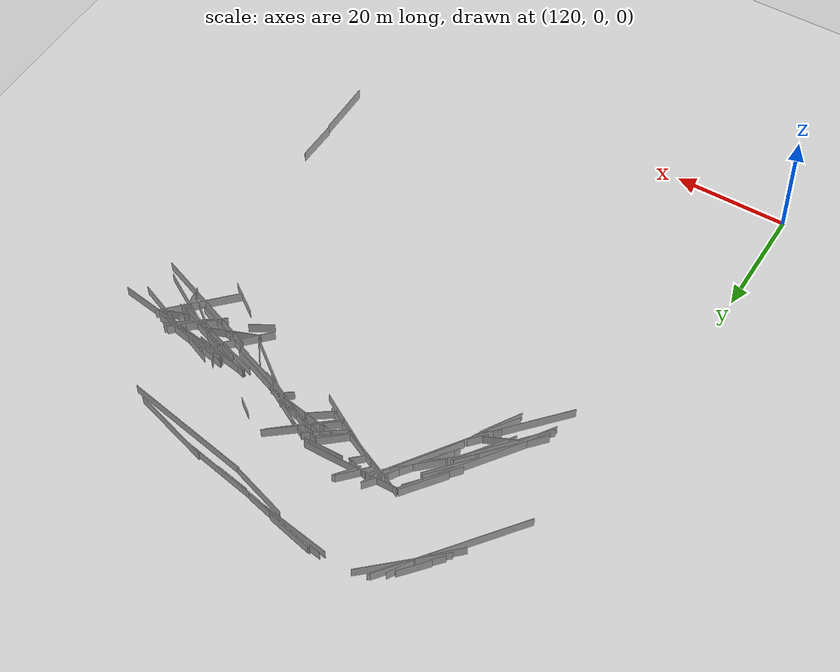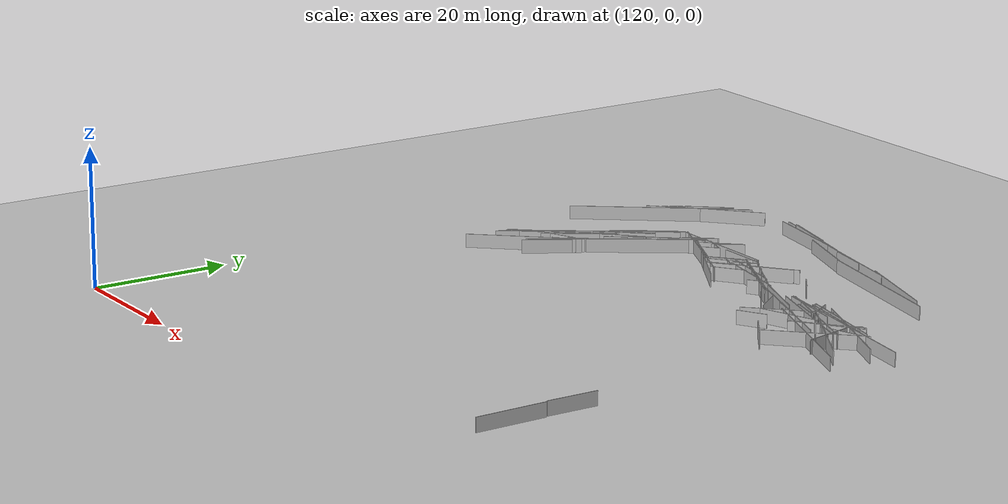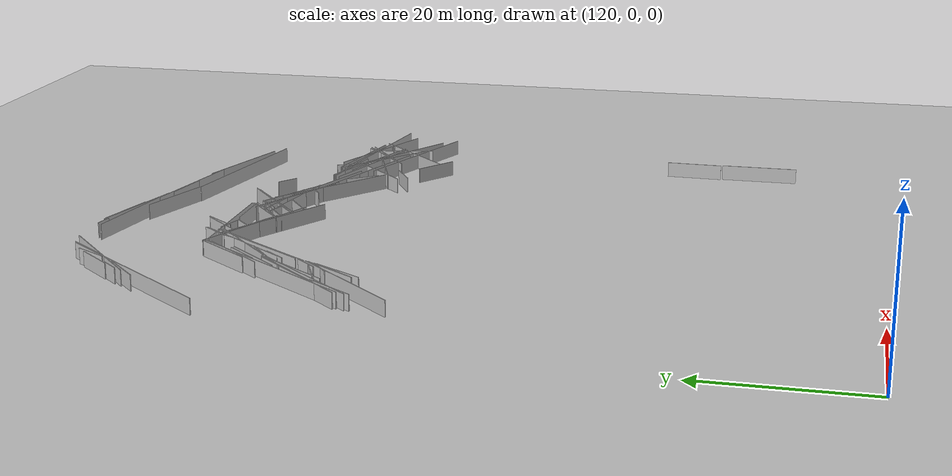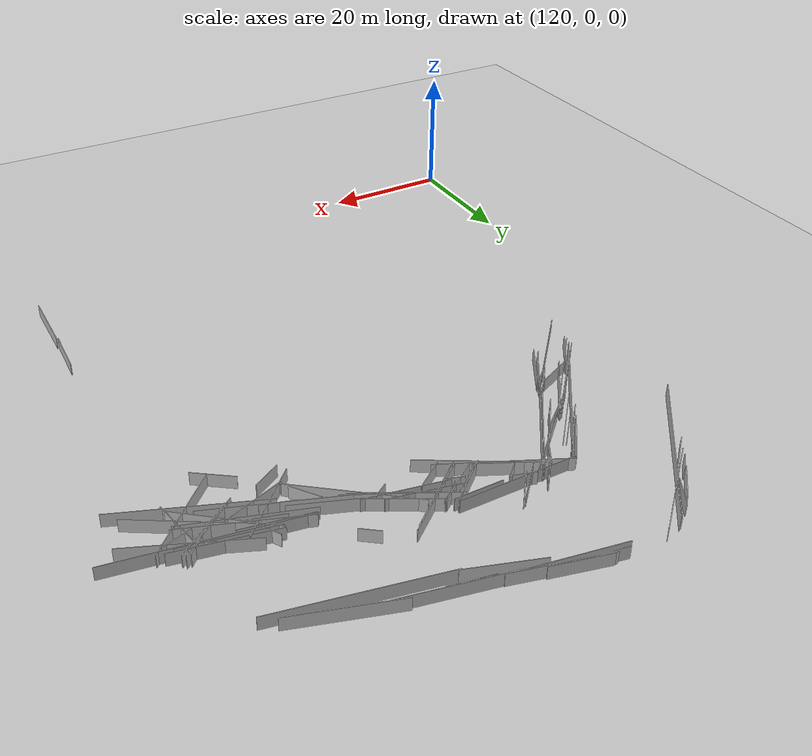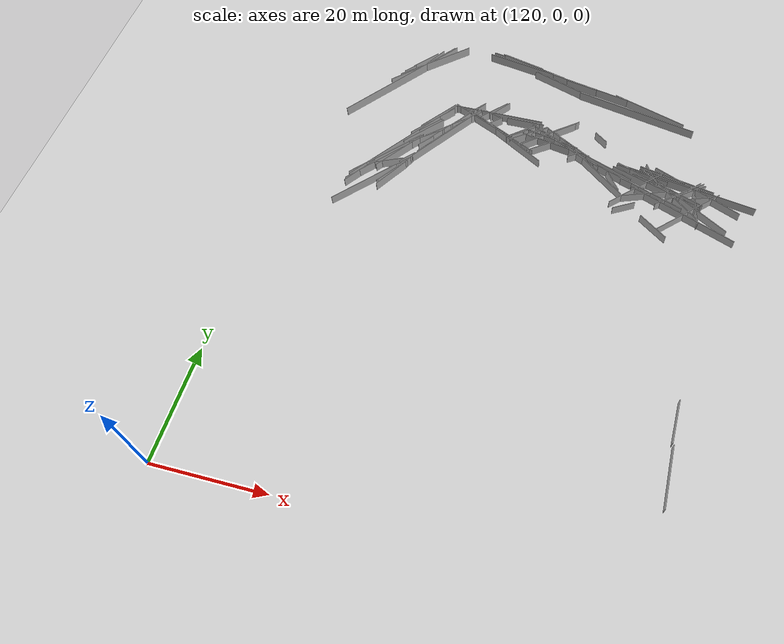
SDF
<sdf version="1.6">
 <world name="slam_world">
  <model name="ground_plane">
   <static>true</static>
   <link name="link">
    <collision name="collision">
     <geometry><plane><normal>0 0 1</normal><size>100 100</size></plane></geometry>
    </collision>
    <visual name="visual">
     <geometry><plane><normal>0 0 1</normal><size>100 100</size></plane></geometry>
     <material>
      <ambient>0.8 0.8 0.8 1</ambient>
      <diffuse>0.8 0.8 0.8 1</diffuse>
      <specular>0.8 0.8 0.8 1</specular>
     </material>
    </visual>
   </link>
  </model>
  <model name="wall_29">
   <static>true</static>
   <pose>182.40000000000003 87.50000000000001 1.0 0 0 -0.19739555984988053</pose>
   <link name="link">
    <collision name="collision"><geometry><box><size>23.45548976252681 0.1 2.0</size></box></geometry></collision>
    <visual name="visual">
     <geometry><box><size>23.45548976252681 0.1 2.0</size></box></geometry>
     <material><ambient>0.5 0.5 0.5 1</ambient><diffuse>0.7 0.7 0.7 1</diffuse></material>
    </visual>
   </link>
  </model>
  <model name="wall_34">
   <static>true</static>
   <pose>135.3 84.9 1.0 0 0 0.9077781769702474</pose>
   <link name="link">
    <collision name="collision"><geometry><box><size>26.64507459175147 0.1 2.0</size></box></geometry></collision>
    <visual name="visual">
     <geometry><box><size>26.64507459175147 0.1 2.0</size></box></geometry>
     <material><ambient>0.5 0.5 0.5 1</ambient><diffuse>0.7 0.7 0.7 1</diffuse></material>
    </visual>
   </link>
  </model>
  <model name="wall_38">
   <static>true</static>
   <pose>144.4 70.50000000000001 1.0 0 0 0.868539395285891</pose>
   <link name="link">
    <collision name="collision">
     <geometry><box><size>3.4058772731852685 0.1 2.0</size></box></geometry>
    </collision>
    <visual name="visual">
     <geometry><box><size>3.4058772731852685 0.1 2.0</size></box></geometry>
     <material><ambient>0.5 0.5 0.5 1</ambient><diffuse>0.7 0.7 0.7 1</diffuse></material>
    </visual>
   </link>
  </model>
  <model name="wall_53">
   <static>true</static>
   <pose>198.3 17.10000000000001 1.0 0 0 1.5707963267948966</pose>
   <link name="link">
    <collision name="collision">
     <geometry><box><size>10.200000000000017 0.1 2.0</size></box></geometry>
    </collision>
    <visual name="visual">
     <geometry><box><size>10.200000000000017 0.1 2.0</size></box></geometry>
     <material><ambient>0.5 0.5 0.5 1</ambient><diffuse>0.7 0.7 0.7 1</diffuse></material>
    </visual>
   </link>
  </model>
  <model name="wall_75">
   <static>true</static>
   <pose>151.9 80.7 1.0 0 0 0.881871938580034</pose>
   <link name="link">
    <collision name="collision"><geometry><box><size>4.40454310910906 0.1 2.0</size></box></geometry></collision>
    <visual name="visual">
     <geometry><box><size>4.40454310910906 0.1 2.0</size></box></geometry>
     <material><ambient>0.5 0.5 0.5 1</ambient><diffuse>0.7 0.7 0.7 1</diffuse></material>
    </visual>
   </link>
  </model>
  <model name="wall_86">
   <static>true</static>
   <pose>137.10000000000002 59.80000000000001 1.0 0 0 0.8345388978134679</pose>
   <link name="link">
    <collision name="collision"><geometry><box><size>17.27425830535137 0.1 2.0</size></box></geometry></collision>
    <visual name="visual">
     <geometry><box><size>17.27425830535137 0.1 2.0</size></box></geometry>
     <material><ambient>0.5 0.5 0.5 1</ambient><diffuse>0.7 0.7 0.7 1</diffuse></material>
    </visual>
   </link>
  </model>
  <model name="wall_87">
   <static>true</static>
   <pose>155.3 81.10000000000001 1.0 0 0 0.8076167287241693</pose>
   <link name="link">
    <collision name="collision"><geometry><box><size>6.3655321851358 0.1 2.0</size></box></geometry></collision>
    <visual name="visual">
     <geometry><box><size>6.3655321851358 0.1 2.0</size></box></geometry>
     <material><ambient>0.5 0.5 0.5 1</ambient><diffuse>0.7 0.7 0.7 1</diffuse></material>
    </visual>
   </link>
  </model>
  <model name="wall_96">
   <static>true</static>
   <pose>140.20000000000002 61.500000000000014 1.0 0 0 1.0209431441183114</pose>
   <link name="link">
    <collision name="collision"><geometry><box><size>7.271863585079157 0.1 2.0</size></box></geometry></collision>
    <visual name="visual">
     <geometry><box><size>7.271863585079157 0.1 2.0</size></box></geometry>
     <material><ambient>0.5 0.5 0.5 1</ambient><diffuse>0.7 0.7 0.7 1</diffuse></material>
    </visual>
   </link>
  </model>
  <model name="wall_97">
   <static>true</static>
   <pose>184.10000000000002 70.20000000000002 1.0 0 0 -0.3520443143154164</pose>
   <link name="link">
    <collision name="collision">
     <geometry><box><size>20.880613017821116 0.1 2.0</size></box></geometry>
    </collision>
    <visual name="visual">
     <geometry><box><size>20.880613017821116 0.1 2.0</size></box></geometry>
     <material><ambient>0.5 0.5 0.5 1</ambient><diffuse>0.7 0.7 0.7 1</diffuse></material>
    </visual>
   </link>
  </model>
  <model name="wall_112">
   <static>true</static>
   <pose>147.90000000000003 73.50000000000001 1.0 0 0 0.9572401812829805</pose>
   <link name="link">
    <collision name="collision"><geometry><box><size>17.3677862722916 0.1 2.0</size></box></geometry></collision>
    <visual name="visual">
     <geometry><box><size>17.3677862722916 0.1 2.0</size></box></geometry>
     <material><ambient>0.5 0.5 0.5 1</ambient><diffuse>0.7 0.7 0.7 1</diffuse></material>
    </visual>
   </link>
  </model>
  <model name="wall_143">
   <static>true</static>
   <pose>155.3 80.10000000000002 1.0 0 0 -0.30288486837496736</pose>
   <link name="link">
    <collision name="collision">
     <geometry><box><size>3.3526109228480854 0.1 2.0</size></box></geometry>
    </collision>
    <visual name="visual">
     <geometry><box><size>3.3526109228480854 0.1 2.0</size></box></geometry>
     <material><ambient>0.5 0.5 0.5 1</ambient><diffuse>0.7 0.7 0.7 1</diffuse></material>
    </visual>
   </link>
  </model>
  <model name="wall_163">
   <static>true</static>
   <pose>153.00000000000003 96.00000000000001 1.0 0 0 -0.1798534997924817</pose>
   <link name="link">
    <collision name="collision">
     <geometry><box><size>2.2360679774997796 0.1 2.0</size></box></geometry>
    </collision>
    <visual name="visual">
     <geometry><box><size>2.2360679774997796 0.1 2.0</size></box></geometry>
     <material><ambient>0.5 0.5 0.5 1</ambient><diffuse>0.7 0.7 0.7 1</diffuse></material>
    </visual>
   </link>
  </model>
  <model name="wall_168">
   <static>true</static>
   <pose>194.10000000000002 65.60000000000001 1.0 0 0 -0.369906067456557</pose>
   <link name="link">
    <collision name="collision"><geometry><box><size>21.02189334955348 0.1 2.0</size></box></geometry></collision>
    <visual name="visual">
     <geometry><box><size>21.02189334955348 0.1 2.0</size></box></geometry>
     <material><ambient>0.5 0.5 0.5 1</ambient><diffuse>0.7 0.7 0.7 1</diffuse></material>
    </visual>
   </link>
  </model>
  <model name="wall_189">
   <static>true</static>
   <pose>179.40000000000003 72.7 1.0 0 0 -0.3612037554936822</pose>
   <link name="link">
    <collision name="collision"><geometry><box><size>9.620810776644557 0.1 2.0</size></box></geometry></collision>
    <visual name="visual">
     <geometry><box><size>9.620810776644557 0.1 2.0</size></box></geometry>
     <material><ambient>0.5 0.5 0.5 1</ambient><diffuse>0.7 0.7 0.7 1</diffuse></material>
    </visual>
   </link>
  </model>
  <model name="wall_204">
   <static>true</static>
   <pose>140.8 63.80000000000001 1.0 0 0 0.655695626241532</pose>
   <link name="link">
    <collision name="collision"><geometry><box><size>3.280243893371363 0.1 2.0</size></box></geometry></collision>
    <visual name="visual">
     <geometry><box><size>3.280243893371363 0.1 2.0</size></box></geometry>
     <material><ambient>0.5 0.5 0.5 1</ambient><diffuse>0.7 0.7 0.7 1</diffuse></material>
    </visual>
   </link>
  </model>
  <model name="wall_217">
   <static>true</static>
   <pose>172.5 91.60000000000001 1.0 0 0 -0.2023216283783045</pose>
   <link name="link">
    <collision name="collision">
     <geometry><box><size>15.924823389915533 0.1 2.0</size></box></geometry>
    </collision>
    <visual name="visual">
     <geometry><box><size>15.924823389915533 0.1 2.0</size></box></geometry>
     <material><ambient>0.5 0.5 0.5 1</ambient><diffuse>0.7 0.7 0.7 1</diffuse></material>
    </visual>
   </link>
  </model>
  <model name="wall_218">
   <static>true</static>
   <pose>137.70000000000002 64.60000000000001 1.0 0 0 0.8542546526984927</pose>
   <link name="link">
    <collision name="collision">
     <geometry><box><size>16.443843832875583 0.1 2.0</size></box></geometry>
    </collision>
    <visual name="visual">
     <geometry><box><size>16.443843832875583 0.1 2.0</size></box></geometry>
     <material><ambient>0.5 0.5 0.5 1</ambient><diffuse>0.7 0.7 0.7 1</diffuse></material>
    </visual>
   </link>
  </model>
  <model name="wall_225">
   <static>true</static>
   <pose>188.70000000000002 70.50000000000001 1.0 0 0 -0.3109982806055411</pose>
   <link name="link">
    <collision name="collision">
     <geometry><box><size>17.646529403823305 0.1 2.0</size></box></geometry>
    </collision>
    <visual name="visual">
     <geometry><box><size>17.646529403823305 0.1 2.0</size></box></geometry>
     <material><ambient>0.5 0.5 0.5 1</ambient><diffuse>0.7 0.7 0.7 1</diffuse></material>
    </visual>
   </link>
  </model>
  <model name="wall_250">
   <static>true</static>
   <pose>167.70000000000002 76.9 1.0 0 0 -0.20846521837998602</pose>
   <link name="link">
    <collision name="collision"><geometry><box><size>10.63014581273468 0.1 2.0</size></box></geometry></collision>
    <visual name="visual">
     <geometry><box><size>10.63014581273468 0.1 2.0</size></box></geometry>
     <material><ambient>0.5 0.5 0.5 1</ambient><diffuse>0.7 0.7 0.7 1</diffuse></material>
    </visual>
   </link>
  </model>
  <model name="wall_253">
   <static>true</static>
   <pose>142.10000000000002 65.90000000000002 1.0 0 0 0.825376850520742</pose>
   <link name="link">
    <collision name="collision"><geometry><box><size>3.538361202590807 0.1 2.0</size></box></geometry></collision>
    <visual name="visual">
     <geometry><box><size>3.538361202590807 0.1 2.0</size></box></geometry>
     <material><ambient>0.5 0.5 0.5 1</ambient><diffuse>0.7 0.7 0.7 1</diffuse></material>
    </visual>
   </link>
  </model>
  <model name="wall_262">
   <static>true</static>
   <pose>156.4 80.4 1.0 0 0 0.0</pose>
   <link name="link">
    <collision name="collision">
     <geometry><box><size>17.400000000000034 0.1 2.0</size></box></geometry>
    </collision>
    <visual name="visual">
     <geometry><box><size>17.400000000000034 0.1 2.0</size></box></geometry>
     <material><ambient>0.5 0.5 0.5 1</ambient><diffuse>0.7 0.7 0.7 1</diffuse></material>
    </visual>
   </link>
  </model>
  <model name="wall_301">
   <static>true</static>
   <pose>163.20000000000002 76.60000000000001 1.0 0 0 -0.3487710035839018</pose>
   <link name="link">
    <collision name="collision">
     <geometry><box><size>2.3409399821439085 0.1 2.0</size></box></geometry>
    </collision>
    <visual name="visual">
     <geometry><box><size>2.3409399821439085 0.1 2.0</size></box></geometry>
     <material><ambient>0.5 0.5 0.5 1</ambient><diffuse>0.7 0.7 0.7 1</diffuse></material>
    </visual>
   </link>
  </model>
  <model name="wall_330">
   <static>true</static>
   <pose>140.3 62.2 1.0 0 0 0.9505468408120746</pose>
   <link name="link">
    <collision name="collision"><geometry><box><size>6.881860213634097 0.1 2.0</size></box></geometry></collision>
    <visual name="visual">
     <geometry><box><size>6.881860213634097 0.1 2.0</size></box></geometry>
     <material><ambient>0.5 0.5 0.5 1</ambient><diffuse>0.7 0.7 0.7 1</diffuse></material>
    </visual>
   </link>
  </model>
  <model name="wall_335">
   <static>true</static>
   <pose>172.70000000000002 74.2 1.0 0 0 0.5880026035475594</pose>
   <link name="link">
    <collision name="collision">
     <geometry><box><size>2.8844410203712165 0.1 2.0</size></box></geometry>
    </collision>
    <visual name="visual">
     <geometry><box><size>2.8844410203712165 0.1 2.0</size></box></geometry>
     <material><ambient>0.5 0.5 0.5 1</ambient><diffuse>0.7 0.7 0.7 1</diffuse></material>
    </visual>
   </link>
  </model>
  <model name="wall_361">
   <static>true</static>
   <pose>140.4 70.00000000000001 1.0 0 0 0.9425612075483915</pose>
   <link name="link">
    <collision name="collision"><geometry><box><size>26.20305325720653 0.1 2.0</size></box></geometry></collision>
    <visual name="visual">
     <geometry><box><size>26.20305325720653 0.1 2.0</size></box></geometry>
     <material><ambient>0.5 0.5 0.5 1</ambient><diffuse>0.7 0.7 0.7 1</diffuse></material>
    </visual>
   </link>
  </model>
  <model name="wall_364">
   <static>true</static>
   <pose>196.20000000000002 71.4 1.0 0 0 -0.39741808388457495</pose>
   <link name="link">
    <collision name="collision">
     <geometry><box><size>17.569291391516046 0.1 2.0</size></box></geometry>
    </collision>
    <visual name="visual">
     <geometry><box><size>17.569291391516046 0.1 2.0</size></box></geometry>
     <material><ambient>0.5 0.5 0.5 1</ambient><diffuse>0.7 0.7 0.7 1</diffuse></material>
    </visual>
   </link>
  </model>
  <model name="wall_383">
   <static>true</static>
   <pose>163.10000000000002 77.10000000000001 1.0 0 0 0.623199329934067</pose>
   <link name="link">
    <collision name="collision"><geometry><box><size>7.88162419809519 0.1 2.0</size></box></geometry></collision>
    <visual name="visual">
     <geometry><box><size>7.88162419809519 0.1 2.0</size></box></geometry>
     <material><ambient>0.5 0.5 0.5 1</ambient><diffuse>0.7 0.7 0.7 1</diffuse></material>
    </visual>
   </link>
  </model>
  <model name="wall_399">
   <static>true</static>
   <pose>194.00000000000003 71.9 1.0 0 0 -0.15895296982869242</pose>
   <link name="link">
    <collision name="collision"><geometry><box><size>26.53450583674019 0.1 2.0</size></box></geometry></collision>
    <visual name="visual">
     <geometry><box><size>26.53450583674019 0.1 2.0</size></box></geometry>
     <material><ambient>0.5 0.5 0.5 1</ambient><diffuse>0.7 0.7 0.7 1</diffuse></material>
    </visual>
   </link>
  </model>
  <model name="wall_417">
   <static>true</static>
   <pose>158.20000000000002 95.20000000000002 1.0 0 0 -0.2392315999636609</pose>
   <link name="link">
    <collision name="collision"><geometry><box><size>8.440379138403665 0.1 2.0</size></box></geometry></collision>
    <visual name="visual">
     <geometry><box><size>8.440379138403665 0.1 2.0</size></box></geometry>
     <material><ambient>0.5 0.5 0.5 1</ambient><diffuse>0.7 0.7 0.7 1</diffuse></material>
    </visual>
   </link>
  </model>
  <model name="wall_419">
   <static>true</static>
   <pose>150.20000000000002 78.40000000000002 1.0 0 0 1.0222469243443701</pose>
   <link name="link">
    <collision name="collision"><geometry><box><size>4.219004621945786 0.1 2.0</size></box></geometry></collision>
    <visual name="visual">
     <geometry><box><size>4.219004621945786 0.1 2.0</size></box></geometry>
     <material><ambient>0.5 0.5 0.5 1</ambient><diffuse>0.7 0.7 0.7 1</diffuse></material>
    </visual>
   </link>
  </model>
  <model name="wall_422">
   <static>true</static>
   <pose>143.70000000000002 71.30000000000001 1.0 0 0 0.671143835436006</pose>
   <link name="link">
    <collision name="collision"><geometry><box><size>8.683317338436959 0.1 2.0</size></box></geometry></collision>
    <visual name="visual">
     <geometry><box><size>8.683317338436959 0.1 2.0</size></box></geometry>
     <material><ambient>0.5 0.5 0.5 1</ambient><diffuse>0.7 0.7 0.7 1</diffuse></material>
    </visual>
   </link>
  </model>
  <model name="wall_431">
   <static>true</static>
   <pose>158.8 75.5 1.0 0 0 -0.5288815507531254</pose>
   <link name="link">
    <collision name="collision"><geometry><box><size>17.83704011320262 0.1 2.0</size></box></geometry></collision>
    <visual name="visual">
     <geometry><box><size>17.83704011320262 0.1 2.0</size></box></geometry>
     <material><ambient>0.5 0.5 0.5 1</ambient><diffuse>0.7 0.7 0.7 1</diffuse></material>
    </visual>
   </link>
  </model>
  <model name="wall_436">
   <static>true</static>
   <pose>185.3 69.4 1.0 0 0 0.7853981633974515</pose>
   <link name="link">
    <collision name="collision">
     <geometry><box><size>12.445079348883212 0.1 2.0</size></box></geometry>
    </collision>
    <visual name="visual">
     <geometry><box><size>12.445079348883212 0.1 2.0</size></box></geometry>
     <material><ambient>0.5 0.5 0.5 1</ambient><diffuse>0.7 0.7 0.7 1</diffuse></material>
    </visual>
   </link>
  </model>
  <model name="wall_451">
   <static>true</static>
   <pose>198.20000000000002 26.10000000000001 1.0 0 0 1.5437758776076334</pose>
   <link name="link">
    <collision name="collision"><geometry><box><size>7.402702209328704 0.1 2.0</size></box></geometry></collision>
    <visual name="visual">
     <geometry><box><size>7.402702209328704 0.1 2.0</size></box></geometry>
     <material><ambient>0.5 0.5 0.5 1</ambient><diffuse>0.7 0.7 0.7 1</diffuse></material>
    </visual>
   </link>
  </model>
  <model name="wall_502">
   <static>true</static>
   <pose>185.8 72.9 1.0 0 0 -0.1816488300000139</pose>
   <link name="link">
    <collision name="collision"><geometry><box><size>9.963934965664878 0.1 2.0</size></box></geometry></collision>
    <visual name="visual">
     <geometry><box><size>9.963934965664878 0.1 2.0</size></box></geometry>
     <material><ambient>0.5 0.5 0.5 1</ambient><diffuse>0.7 0.7 0.7 1</diffuse></material>
    </visual>
   </link>
  </model>
  <model name="wall_512">
   <static>true</static>
   <pose>158.8 94.30000000000001 1.0 0 0 -0.17162806838088146</pose>
   <link name="link">
    <collision name="collision">
     <geometry><box><size>15.223665787188056 0.1 2.0</size></box></geometry>
    </collision>
    <visual name="visual">
     <geometry><box><size>15.223665787188056 0.1 2.0</size></box></geometry>
     <material><ambient>0.5 0.5 0.5 1</ambient><diffuse>0.7 0.7 0.7 1</diffuse></material>
    </visual>
   </link>
  </model>
  <model name="wall_514">
   <static>true</static>
   <pose>169.70000000000002 75.50000000000001 1.0 0 0 -0.18742911244367563</pose>
   <link name="link">
    <collision name="collision">
     <geometry><box><size>11.806777714516324 0.1 2.0</size></box></geometry>
    </collision>
    <visual name="visual">
     <geometry><box><size>11.806777714516324 0.1 2.0</size></box></geometry>
     <material><ambient>0.5 0.5 0.5 1</ambient><diffuse>0.7 0.7 0.7 1</diffuse></material>
    </visual>
   </link>
  </model>
  <model name="wall_526">
   <static>true</static>
   <pose>139.5 67.4 1.0 0 0 0.8329812666744324</pose>
   <link name="link">
    <collision name="collision">
     <geometry><box><size>11.892854997854812 0.1 2.0</size></box></geometry>
    </collision>
    <visual name="visual">
     <geometry><box><size>11.892854997854812 0.1 2.0</size></box></geometry>
     <material><ambient>0.5 0.5 0.5 1</ambient><diffuse>0.7 0.7 0.7 1</diffuse></material>
    </visual>
   </link>
  </model>
  <model name="wall_527">
   <static>true</static>
   <pose>193.60000000000002 70.30000000000001 1.0 0 0 0.6647744948173481</pose>
   <link name="link">
    <collision name="collision"><geometry><box><size>9.402127418834516 0.1 2.0</size></box></geometry></collision>
    <visual name="visual">
     <geometry><box><size>9.402127418834516 0.1 2.0</size></box></geometry>
     <material><ambient>0.5 0.5 0.5 1</ambient><diffuse>0.7 0.7 0.7 1</diffuse></material>
    </visual>
   </link>
  </model>
  <model name="wall_528">
   <static>true</static>
   <pose>195.20000000000002 66.30000000000001 1.0 0 0 0.7853981633974483</pose>
   <link name="link">
    <collision name="collision">
     <geometry><box><size>14.424978336205553 0.1 2.0</size></box></geometry>
    </collision>
    <visual name="visual">
     <geometry><box><size>14.424978336205553 0.1 2.0</size></box></geometry>
     <material><ambient>0.5 0.5 0.5 1</ambient><diffuse>0.7 0.7 0.7 1</diffuse></material>
    </visual>
   </link>
  </model>
  <model name="wall_572">
   <static>true</static>
   <pose>148.1 74.10000000000002 1.0 0 0 0.9549263748553707</pose>
   <link name="link">
    <collision name="collision">
     <geometry><box><size>15.926079241294756 0.1 2.0</size></box></geometry>
    </collision>
    <visual name="visual">
     <geometry><box><size>15.926079241294756 0.1 2.0</size></box></geometry>
     <material><ambient>0.5 0.5 0.5 1</ambient><diffuse>0.7 0.7 0.7 1</diffuse></material>
    </visual>
   </link>
  </model>
  <model name="wall_594">
   <static>true</static>
   <pose>186.9 68.4 1.0 0 0 0.34877100358390545</pose>
   <link name="link">
    <collision name="collision"><geometry><box><size>9.363759928575707 0.1 2.0</size></box></geometry></collision>
    <visual name="visual">
     <geometry><box><size>9.363759928575707 0.1 2.0</size></box></geometry>
     <material><ambient>0.5 0.5 0.5 1</ambient><diffuse>0.7 0.7 0.7 1</diffuse></material>
    </visual>
   </link>
  </model>
  <model name="wall_599">
   <static>true</static>
   <pose>191.70000000000002 72.60000000000001 1.0 0 0 -0.18534794999569504</pose>
   <link name="link">
    <collision name="collision">
     <geometry><box><size>13.023056476879777 0.1 2.0</size></box></geometry>
    </collision>
    <visual name="visual">
     <geometry><box><size>13.023056476879777 0.1 2.0</size></box></geometry>
     <material><ambient>0.5 0.5 0.5 1</ambient><diffuse>0.7 0.7 0.7 1</diffuse></material>
    </visual>
   </link>
  </model>
  <model name="wall_623">
   <static>true</static>
   <pose>162.10000000000002 77.70000000000002 1.0 0 0 0.6947382761967031</pose>
   <link name="link">
    <collision name="collision"><geometry><box><size>7.810249675906654 0.1 2.0</size></box></geometry></collision>
    <visual name="visual">
     <geometry><box><size>7.810249675906654 0.1 2.0</size></box></geometry>
     <material><ambient>0.5 0.5 0.5 1</ambient><diffuse>0.7 0.7 0.7 1</diffuse></material>
    </visual>
   </link>
  </model>
  <model name="wall_630">
   <static>true</static>
   <pose>146.20000000000002 73.70000000000002 1.0 0 0 0.7354397676755083</pose>
   <link name="link">
    <collision name="collision"><geometry><box><size>5.663920903402517 0.1 2.0</size></box></geometry></collision>
    <visual name="visual">
     <geometry><box><size>5.663920903402517 0.1 2.0</size></box></geometry>
     <material><ambient>0.5 0.5 0.5 1</ambient><diffuse>0.7 0.7 0.7 1</diffuse></material>
    </visual>
   </link>
  </model>
  <model name="wall_632">
   <static>true</static>
   <pose>134.3 60.70000000000002 1.0 0 0 0.9670469933974611</pose>
   <link name="link">
    <collision name="collision"><geometry><box><size>7.045565981523424 0.1 2.0</size></box></geometry></collision>
    <visual name="visual">
     <geometry><box><size>7.045565981523424 0.1 2.0</size></box></geometry>
     <material><ambient>0.5 0.5 0.5 1</ambient><diffuse>0.7 0.7 0.7 1</diffuse></material>
    </visual>
   </link>
  </model>
  <model name="wall_643">
   <static>true</static>
   <pose>138.6 90.80000000000001 1.0 0 0 0.8584387287005636</pose>
   <link name="link">
    <collision name="collision"><geometry><box><size>5.813776741499443 0.1 2.0</size></box></geometry></collision>
    <visual name="visual">
     <geometry><box><size>5.813776741499443 0.1 2.0</size></box></geometry>
     <material><ambient>0.5 0.5 0.5 1</ambient><diffuse>0.7 0.7 0.7 1</diffuse></material>
    </visual>
   </link>
  </model>
  <model name="wall_647">
   <static>true</static>
   <pose>161.9 79.80000000000001 1.0 0 0 0.0</pose>
   <link name="link">
    <collision name="collision"><geometry><box><size>7.199999999999989 0.1 2.0</size></box></geometry></collision>
    <visual name="visual">
     <geometry><box><size>7.199999999999989 0.1 2.0</size></box></geometry>
     <material><ambient>0.5 0.5 0.5 1</ambient><diffuse>0.7 0.7 0.7 1</diffuse></material>
    </visual>
   </link>
  </model>
  <model name="wall_650">
   <static>true</static>
   <pose>184.90000000000003 88.60000000000001 1.0 0 0 -0.3045108832021129</pose>
   <link name="link">
    <collision name="collision">
     <geometry><box><size>14.675149062275315 0.1 2.0</size></box></geometry>
    </collision>
    <visual name="visual">
     <geometry><box><size>14.675149062275315 0.1 2.0</size></box></geometry>
     <material><ambient>0.5 0.5 0.5 1</ambient><diffuse>0.7 0.7 0.7 1</diffuse></material>
    </visual>
   </link>
  </model>
  <model name="wall_661">
   <static>true</static>
   <pose>167.00000000000003 78.20000000000002 1.0 0 0 0.6651026864694947</pose>
   <link name="link">
    <collision name="collision">
     <geometry><box><size>12.963024338479032 0.1 2.0</size></box></geometry>
    </collision>
    <visual name="visual">
     <geometry><box><size>12.963024338479032 0.1 2.0</size></box></geometry>
     <material><ambient>0.5 0.5 0.5 1</ambient><diffuse>0.7 0.7 0.7 1</diffuse></material>
    </visual>
   </link>
  </model>
  <model name="wall_675">
   <static>true</static>
   <pose>145.1 77.20000000000002 1.0 0 0 0.9179496956941242</pose>
   <link name="link">
    <collision name="collision"><geometry><box><size>8.56037382361308 0.1 2.0</size></box></geometry></collision>
    <visual name="visual">
     <geometry><box><size>8.56037382361308 0.1 2.0</size></box></geometry>
     <material><ambient>0.5 0.5 0.5 1</ambient><diffuse>0.7 0.7 0.7 1</diffuse></material>
    </visual>
   </link>
  </model>
  <model name="wall_677">
   <static>true</static>
   <pose>135.5 86.10000000000001 1.0 0 0 0.76214654058699</pose>
   <link name="link">
    <collision name="collision"><geometry><box><size>6.082762530298215 0.1 2.0</size></box></geometry></collision>
    <visual name="visual">
     <geometry><box><size>6.082762530298215 0.1 2.0</size></box></geometry>
     <material><ambient>0.5 0.5 0.5 1</ambient><diffuse>0.7 0.7 0.7 1</diffuse></material>
    </visual>
   </link>
  </model>
  <model name="wall_679">
   <static>true</static>
   <pose>196.4 67.60000000000001 1.0 0 0 -1.3787483095541624</pose>
   <link name="link">
    <collision name="collision"><geometry><box><size>7.334848328356922 0.1 2.0</size></box></geometry></collision>
    <visual name="visual">
     <geometry><box><size>7.334848328356922 0.1 2.0</size></box></geometry>
     <material><ambient>0.5 0.5 0.5 1</ambient><diffuse>0.7 0.7 0.7 1</diffuse></material>
    </visual>
   </link>
  </model>
  <model name="wall_684">
   <static>true</static>
   <pose>187.60000000000002 73.10000000000001 1.0 0 0 -1.0164888305933433</pose>
   <link name="link">
    <collision name="collision"><geometry><box><size>4.939635614091414 0.1 2.0</size></box></geometry></collision>
    <visual name="visual">
     <geometry><box><size>4.939635614091414 0.1 2.0</size></box></geometry>
     <material><ambient>0.5 0.5 0.5 1</ambient><diffuse>0.7 0.7 0.7 1</diffuse></material>
    </visual>
   </link>
  </model>
  <model name="wall_686">
   <static>true</static>
   <pose>136.20000000000002 87.80000000000001 1.0 0 0 0.8379812250083869</pose>
   <link name="link">
    <collision name="collision"><geometry><box><size>2.69072480941475 0.1 2.0</size></box></geometry></collision>
    <visual name="visual">
     <geometry><box><size>2.69072480941475 0.1 2.0</size></box></geometry>
     <material><ambient>0.5 0.5 0.5 1</ambient><diffuse>0.7 0.7 0.7 1</diffuse></material>
    </visual>
   </link>
  </model>
  <model name="wall_694">
   <static>true</static>
   <pose>148.60000000000002 76.10000000000001 1.0 0 0 0.9143089350814416</pose>
   <link name="link">
    <collision name="collision">
     <geometry><box><size>15.401298646542765 0.1 2.0</size></box></geometry>
    </collision>
    <visual name="visual">
     <geometry><box><size>15.401298646542765 0.1 2.0</size></box></geometry>
     <material><ambient>0.5 0.5 0.5 1</ambient><diffuse>0.7 0.7 0.7 1</diffuse></material>
    </visual>
   </link>
  </model>
  <model name="wall_711">
   <static>true</static>
   <pose>143.3 72.80000000000001 1.0 0 0 0.8478169733934064</pose>
   <link name="link">
    <collision name="collision"><geometry><box><size>9.068627239003716 0.1 2.0</size></box></geometry></collision>
    <visual name="visual">
     <geometry><box><size>9.068627239003716 0.1 2.0</size></box></geometry>
     <material><ambient>0.5 0.5 0.5 1</ambient><diffuse>0.7 0.7 0.7 1</diffuse></material>
    </visual>
   </link>
  </model>
  <model name="wall_716">
   <static>true</static>
   <pose>192.3 73.00000000000001 1.0 0 0 -0.19739555984987958</pose>
   <link name="link">
    <collision name="collision">
     <geometry><box><size>14.277254638059794 0.1 2.0</size></box></geometry>
    </collision>
    <visual name="visual">
     <geometry><box><size>14.277254638059794 0.1 2.0</size></box></geometry>
     <material><ambient>0.5 0.5 0.5 1</ambient><diffuse>0.7 0.7 0.7 1</diffuse></material>
    </visual>
   </link>
  </model>
  <model name="wall_719">
   <static>true</static>
   <pose>175.5 72.80000000000001 1.0 0 0 -0.6610431688506871</pose>
   <link name="link">
    <collision name="collision"><geometry><box><size>18.24280680158618 0.1 2.0</size></box></geometry></collision>
    <visual name="visual">
     <geometry><box><size>18.24280680158618 0.1 2.0</size></box></geometry>
     <material><ambient>0.5 0.5 0.5 1</ambient><diffuse>0.7 0.7 0.7 1</diffuse></material>
    </visual>
   </link>
  </model>
  <model name="wall_735">
   <static>true</static>
   <pose>165.1 78.2 1.0 0 0 0.7086262721276695</pose>
   <link name="link">
    <collision name="collision"><geometry><box><size>3.687817782917167 0.1 2.0</size></box></geometry></collision>
    <visual name="visual">
     <geometry><box><size>3.687817782917167 0.1 2.0</size></box></geometry>
     <material><ambient>0.5 0.5 0.5 1</ambient><diffuse>0.7 0.7 0.7 1</diffuse></material>
    </visual>
   </link>
  </model>
  <model name="wall_737">
   <static>true</static>
   <pose>197.20000000000002 69.90000000000002 1.0 0 0 0.32175055439664424</pose>
   <link name="link">
    <collision name="collision"><geometry><box><size>4.427188724235722 0.1 2.0</size></box></geometry></collision>
    <visual name="visual">
     <geometry><box><size>4.427188724235722 0.1 2.0</size></box></geometry>
     <material><ambient>0.5 0.5 0.5 1</ambient><diffuse>0.7 0.7 0.7 1</diffuse></material>
    </visual>
   </link>
  </model>
  <model name="wall_744">
   <static>true</static>
   <pose>170.6 75.60000000000002 1.0 0 0 -0.470404262936591</pose>
   <link name="link">
    <collision name="collision"><geometry><box><size>13.23782459469834 0.1 2.0</size></box></geometry></collision>
    <visual name="visual">
     <geometry><box><size>13.23782459469834 0.1 2.0</size></box></geometry>
     <material><ambient>0.5 0.5 0.5 1</ambient><diffuse>0.7 0.7 0.7 1</diffuse></material>
    </visual>
   </link>
  </model>
  <model name="wall_745">
   <static>true</static>
   <pose>140.5 91.00000000000001 1.0 0 0 0.7309067071567165</pose>
   <link name="link">
    <collision name="collision">
     <geometry><box><size>15.579473675320378 0.1 2.0</size></box></geometry>
    </collision>
    <visual name="visual">
     <geometry><box><size>15.579473675320378 0.1 2.0</size></box></geometry>
     <material><ambient>0.5 0.5 0.5 1</ambient><diffuse>0.7 0.7 0.7 1</diffuse></material>
    </visual>
   </link>
  </model>
  <model name="wall_746">
   <static>true</static>
   <pose>166.70000000000002 77.70000000000002 1.0 0 0 0.6823165548747505</pose>
   <link name="link">
    <collision name="collision">
     <geometry><box><size>12.369316876852961 0.1 2.0</size></box></geometry>
    </collision>
    <visual name="visual">
     <geometry><box><size>12.369316876852961 0.1 2.0</size></box></geometry>
     <material><ambient>0.5 0.5 0.5 1</ambient><diffuse>0.7 0.7 0.7 1</diffuse></material>
    </visual>
   </link>
  </model>
  <model name="wall_747">
   <static>true</static>
   <pose>138.8 64.2 1.0 0 0 0.41822432957923156</pose>
   <link name="link">
    <collision name="collision"><geometry><box><size>5.909314681077644 0.1 2.0</size></box></geometry></collision>
    <visual name="visual">
     <geometry><box><size>5.909314681077644 0.1 2.0</size></box></geometry>
     <material><ambient>0.5 0.5 0.5 1</ambient><diffuse>0.7 0.7 0.7 1</diffuse></material>
    </visual>
   </link>
  </model>
  <model name="wall_761">
   <static>true</static>
   <pose>193.40000000000003 69.70000000000002 1.0 0 0 0.6246354227716114</pose>
   <link name="link">
    <collision name="collision">
     <geometry><box><size>10.601886624558869 0.1 2.0</size></box></geometry>
    </collision>
    <visual name="visual">
     <geometry><box><size>10.601886624558869 0.1 2.0</size></box></geometry>
     <material><ambient>0.5 0.5 0.5 1</ambient><diffuse>0.7 0.7 0.7 1</diffuse></material>
    </visual>
   </link>
  </model>
  <model name="wall_788">
   <static>true</static>
   <pose>140.4 62.500000000000014 1.0 0 0 0.962107019467488</pose>
   <link name="link">
    <collision name="collision"><geometry><box><size>8.044874144447483 0.1 2.0</size></box></geometry></collision>
    <visual name="visual">
     <geometry><box><size>8.044874144447483 0.1 2.0</size></box></geometry>
     <material><ambient>0.5 0.5 0.5 1</ambient><diffuse>0.7 0.7 0.7 1</diffuse></material>
    </visual>
   </link>
  </model>
  <model name="wall_789">
   <static>true</static>
   <pose>183.6 64.9 1.0 0 0 0.5247957716501038</pose>
   <link name="link">
    <collision name="collision"><geometry><box><size>4.390899680020034 0.1 2.0</size></box></geometry></collision>
    <visual name="visual">
     <geometry><box><size>4.390899680020034 0.1 2.0</size></box></geometry>
     <material><ambient>0.5 0.5 0.5 1</ambient><diffuse>0.7 0.7 0.7 1</diffuse></material>
    </visual>
   </link>
  </model>
  <model name="wall_797">
   <static>true</static>
   <pose>142.00000000000003 93.20000000000002 1.0 0 0 0.9011573811182587</pose>
   <link name="link">
    <collision name="collision">
     <geometry><box><size>6.1220911460056024 0.1 2.0</size></box></geometry>
    </collision>
    <visual name="visual">
     <geometry><box><size>6.1220911460056024 0.1 2.0</size></box></geometry>
     <material><ambient>0.5 0.5 0.5 1</ambient><diffuse>0.7 0.7 0.7 1</diffuse></material>
    </visual>
   </link>
  </model>
  <model name="wall_835">
   <static>true</static>
   <pose>160.4 94.50000000000001 1.0 0 0 -0.24848742065740254</pose>
   <link name="link">
    <collision name="collision">
     <geometry><box><size>13.824615727028398 0.1 2.0</size></box></geometry>
    </collision>
    <visual name="visual">
     <geometry><box><size>13.824615727028398 0.1 2.0</size></box></geometry>
     <material><ambient>0.5 0.5 0.5 1</ambient><diffuse>0.7 0.7 0.7 1</diffuse></material>
    </visual>
   </link>
  </model>
  <model name="wall_837">
   <static>true</static>
   <pose>165.8 74.5 1.0 0 0 0.6202494859828164</pose>
   <link name="link">
    <collision name="collision"><geometry><box><size>5.161395160225613 0.1 2.0</size></box></geometry></collision>
    <visual name="visual">
     <geometry><box><size>5.161395160225613 0.1 2.0</size></box></geometry>
     <material><ambient>0.5 0.5 0.5 1</ambient><diffuse>0.7 0.7 0.7 1</diffuse></material>
    </visual>
   </link>
  </model>
  <model name="wall_876">
   <static>true</static>
   <pose>144.4 75.70000000000002 1.0 0 0 0.8685393952858929</pose>
   <link name="link">
    <collision name="collision">
     <geometry><box><size>10.217631819555827 0.1 2.0</size></box></geometry>
    </collision>
    <visual name="visual">
     <geometry><box><size>10.217631819555827 0.1 2.0</size></box></geometry>
     <material><ambient>0.5 0.5 0.5 1</ambient><diffuse>0.7 0.7 0.7 1</diffuse></material>
    </visual>
   </link>
  </model>
  <model name="wall_884">
   <static>true</static>
   <pose>194.0 68.60000000000002 1.0 0 0 -0.542189409926878</pose>
   <link name="link">
    <collision name="collision"><geometry><box><size>19.37937047481163 0.1 2.0</size></box></geometry></collision>
    <visual name="visual">
     <geometry><box><size>19.37937047481163 0.1 2.0</size></box></geometry>
     <material><ambient>0.5 0.5 0.5 1</ambient><diffuse>0.7 0.7 0.7 1</diffuse></material>
    </visual>
   </link>
  </model>
  <model name="wall_888">
   <static>true</static>
   <pose>170.8 91.80000000000001 1.0 0 0 -0.1911844595970113</pose>
   <link name="link">
    <collision name="collision"><geometry><box><size>6.31506136153882 0.1 2.0</size></box></geometry></collision>
    <visual name="visual">
     <geometry><box><size>6.31506136153882 0.1 2.0</size></box></geometry>
     <material><ambient>0.5 0.5 0.5 1</ambient><diffuse>0.7 0.7 0.7 1</diffuse></material>
    </visual>
   </link>
  </model>
  <model name="wall_897">
   <static>true</static>
   <pose>170.8 76.80000000000001 1.0 0 0 -0.509070888422383</pose>
   <link name="link">
    <collision name="collision"><geometry><box><size>9.84885780179613 0.1 2.0</size></box></geometry></collision>
    <visual name="visual">
     <geometry><box><size>9.84885780179613 0.1 2.0</size></box></geometry>
     <material><ambient>0.5 0.5 0.5 1</ambient><diffuse>0.7 0.7 0.7 1</diffuse></material>
    </visual>
   </link>
  </model>
  <model name="wall_904">
   <static>true</static>
   <pose>156.10000000000002 77.30000000000001 1.0 0 0 -0.44344833641973935</pose>
   <link name="link">
    <collision name="collision"><geometry><box><size>8.856635930193816 0.1 2.0</size></box></geometry></collision>
    <visual name="visual">
     <geometry><box><size>8.856635930193816 0.1 2.0</size></box></geometry>
     <material><ambient>0.5 0.5 0.5 1</ambient><diffuse>0.7 0.7 0.7 1</diffuse></material>
    </visual>
   </link>
  </model>
  <model name="wall_906">
   <static>true</static>
   <pose>156.3 78.70000000000002 1.0 0 0 0.7328151017865098</pose>
   <link name="link">
    <collision name="collision"><geometry><box><size>2.69072480941475 0.1 2.0</size></box></geometry></collision>
    <visual name="visual">
     <geometry><box><size>2.69072480941475 0.1 2.0</size></box></geometry>
     <material><ambient>0.5 0.5 0.5 1</ambient><diffuse>0.7 0.7 0.7 1</diffuse></material>
    </visual>
   </link>
  </model>
  <model name="wall_910">
   <static>true</static>
   <pose>191.20000000000002 69.50000000000001 1.0 0 0 -0.6726705518070706</pose>
   <link name="link">
    <collision name="collision"><geometry><box><size>15.0864177325169 0.1 2.0</size></box></geometry></collision>
    <visual name="visual">
     <geometry><box><size>15.0864177325169 0.1 2.0</size></box></geometry>
     <material><ambient>0.5 0.5 0.5 1</ambient><diffuse>0.7 0.7 0.7 1</diffuse></material>
    </visual>
   </link>
  </model>
  <model name="wall_940">
   <static>true</static>
   <pose>144.20000000000002 74.50000000000001 1.0 0 0 0.8408966686431579</pose>
   <link name="link">
    <collision name="collision"><geometry><box><size>5.099019513592794 0.1 2.0</size></box></geometry></collision>
    <visual name="visual">
     <geometry><box><size>5.099019513592794 0.1 2.0</size></box></geometry>
     <material><ambient>0.5 0.5 0.5 1</ambient><diffuse>0.7 0.7 0.7 1</diffuse></material>
    </visual>
   </link>
  </model>
  <model name="wall_941">
   <static>true</static>
   <pose>162.10000000000002 77.30000000000001 1.0 0 0 0.6435011087932844</pose>
   <link name="link">
    <collision name="collision"><geometry><box><size>5.0 0.1 2.0</size></box></geometry></collision>
    <visual name="visual">
     <geometry><box><size>5.0 0.1 2.0</size></box></geometry>
     <material><ambient>0.5 0.5 0.5 1</ambient><diffuse>0.7 0.7 0.7 1</diffuse></material>
    </visual>
   </link>
  </model>
  <model name="wall_946">
   <static>true</static>
   <pose>156.3 76.9 1.0 0 0 -0.43467021514924636</pose>
   <link name="link">
    <collision name="collision">
     <geometry><box><size>18.522418848519724 0.1 2.0</size></box></geometry>
    </collision>
    <visual name="visual">
     <geometry><box><size>18.522418848519724 0.1 2.0</size></box></geometry>
     <material><ambient>0.5 0.5 0.5 1</ambient><diffuse>0.7 0.7 0.7 1</diffuse></material>
    </visual>
   </link>
  </model>
  <model name="wall_962">
   <static>true</static>
   <pose>137.8 65.70000000000002 1.0 0 0 0.8389184318567628</pose>
   <link name="link">
    <collision name="collision">
     <geometry><box><size>15.861904047118704 0.1 2.0</size></box></geometry>
    </collision>
    <visual name="visual">
     <geometry><box><size>15.861904047118704 0.1 2.0</size></box></geometry>
     <material><ambient>0.5 0.5 0.5 1</ambient><diffuse>0.7 0.7 0.7 1</diffuse></material>
    </visual>
   </link>
  </model>
  <model name="wall_984">
   <static>true</static>
   <pose>148.70000000000002 76.0 1.0 0 0 0.7378150601204643</pose>
   <link name="link">
    <collision name="collision">
     <geometry><box><size>11.892854997854812 0.1 2.0</size></box></geometry>
    </collision>
    <visual name="visual">
     <geometry><box><size>11.892854997854812 0.1 2.0</size></box></geometry>
     <material><ambient>0.5 0.5 0.5 1</ambient><diffuse>0.7 0.7 0.7 1</diffuse></material>
    </visual>
   </link>
  </model>
  <model name="wall_999">
   <static>true</static>
   <pose>194.4 70.90000000000002 1.0 0 0 0.7853981633974514</pose>
   <link name="link">
    <collision name="collision"><geometry><box><size>6.505382386916209 0.1 2.0</size></box></geometry></collision>
    <visual name="visual">
     <geometry><box><size>6.505382386916209 0.1 2.0</size></box></geometry>
     <material><ambient>0.5 0.5 0.5 1</ambient><diffuse>0.7 0.7 0.7 1</diffuse></material>
    </visual>
   </link>
  </model>
  <model name="wall_1008">
   <static>true</static>
   <pose>184.4 70.10000000000001 1.0 0 0 -0.2954408371437232</pose>
   <link name="link">
    <collision name="collision"><geometry><box><size>4.808326112068492 0.1 2.0</size></box></geometry></collision>
    <visual name="visual">
     <geometry><box><size>4.808326112068492 0.1 2.0</size></box></geometry>
     <material><ambient>0.5 0.5 0.5 1</ambient><diffuse>0.7 0.7 0.7 1</diffuse></material>
    </visual>
   </link>
  </model>
  <model name="wall_1036">
   <static>true</static>
   <pose>189.40000000000003 61.60000000000001 1.0 0 0 -0.6240230529767561</pose>
   <link name="link">
    <collision name="collision"><geometry><box><size>6.161168720299742 0.1 2.0</size></box></geometry></collision>
    <visual name="visual">
     <geometry><box><size>6.161168720299742 0.1 2.0</size></box></geometry>
     <material><ambient>0.5 0.5 0.5 1</ambient><diffuse>0.7 0.7 0.7 1</diffuse></material>
    </visual>
   </link>
  </model>
  <model name="wall_1048">
   <static>true</static>
   <pose>186.20000000000002 71.80000000000001 1.0 0 0 -0.27829965900510956</pose>
   <link name="link">
    <collision name="collision"><geometry><box><size>4.368065933568297 0.1 2.0</size></box></geometry></collision>
    <visual name="visual">
     <geometry><box><size>4.368065933568297 0.1 2.0</size></box></geometry>
     <material><ambient>0.5 0.5 0.5 1</ambient><diffuse>0.7 0.7 0.7 1</diffuse></material>
    </visual>
   </link>
  </model>
  <model name="wall_1058">
   <static>true</static>
   <pose>180.70000000000002 69.9 1.0 0 0 -0.9357695914045824</pose>
   <link name="link">
    <collision name="collision"><geometry><box><size>4.720169488482394 0.1 2.0</size></box></geometry></collision>
    <visual name="visual">
     <geometry><box><size>4.720169488482394 0.1 2.0</size></box></geometry>
     <material><ambient>0.5 0.5 0.5 1</ambient><diffuse>0.7 0.7 0.7 1</diffuse></material>
    </visual>
   </link>
  </model>
  <model name="wall_1059">
   <static>true</static>
   <pose>140.20000000000002 67.10000000000002 1.0 0 0 0.938047491792716</pose>
   <link name="link">
    <collision name="collision">
     <geometry><box><size>11.160645142642945 0.1 2.0</size></box></geometry>
    </collision>
    <visual name="visual">
     <geometry><box><size>11.160645142642945 0.1 2.0</size></box></geometry>
     <material><ambient>0.5 0.5 0.5 1</ambient><diffuse>0.7 0.7 0.7 1</diffuse></material>
    </visual>
   </link>
  </model>
  <model name="wall_1080">
   <static>true</static>
   <pose>176.9 79.50000000000001 1.0 0 0 -0.643501108793273</pose>
   <link name="link">
    <collision name="collision">
     <geometry><box><size>3.0000000000000173 0.1 2.0</size></box></geometry>
    </collision>
    <visual name="visual">
     <geometry><box><size>3.0000000000000173 0.1 2.0</size></box></geometry>
     <material><ambient>0.5 0.5 0.5 1</ambient><diffuse>0.7 0.7 0.7 1</diffuse></material>
    </visual>
   </link>
  </model>
  <model name="wall_1091">
   <static>true</static>
   <pose>170.5 75.9 1.0 0 0 -0.4636476090008061</pose>
   <link name="link">
    <collision name="collision">
     <geometry><box><size>15.652475842498529 0.1 2.0</size></box></geometry>
    </collision>
    <visual name="visual">
     <geometry><box><size>15.652475842498529 0.1 2.0</size></box></geometry>
     <material><ambient>0.5 0.5 0.5 1</ambient><diffuse>0.7 0.7 0.7 1</diffuse></material>
    </visual>
   </link>
  </model>
  <model name="wall_1093">
   <static>true</static>
   <pose>166.20000000000002 91.50000000000001 1.0 0 0 -0.321750554396643</pose>
   <link name="link">
    <collision name="collision"><geometry><box><size>10.75174404457248 0.1 2.0</size></box></geometry></collision>
    <visual name="visual">
     <geometry><box><size>10.75174404457248 0.1 2.0</size></box></geometry>
     <material><ambient>0.5 0.5 0.5 1</ambient><diffuse>0.7 0.7 0.7 1</diffuse></material>
    </visual>
   </link>
  </model>
  <model name="wall_1113">
   <static>true</static>
   <pose>189.3 71.20000000000002 1.0 0 0 -0.35072794824820397</pose>
   <link name="link">
    <collision name="collision">
     <geometry><box><size>17.463103962354438 0.1 2.0</size></box></geometry>
    </collision>
    <visual name="visual">
     <geometry><box><size>17.463103962354438 0.1 2.0</size></box></geometry>
     <material><ambient>0.5 0.5 0.5 1</ambient><diffuse>0.7 0.7 0.7 1</diffuse></material>
    </visual>
   </link>
  </model>
  <model name="wall_1130">
   <static>true</static>
   <pose>140.3 92.0 1.0 0 0 1.0303768265243167</pose>
   <link name="link">
    <collision name="collision"><geometry><box><size>4.664761515876228 0.1 2.0</size></box></geometry></collision>
    <visual name="visual">
     <geometry><box><size>4.664761515876228 0.1 2.0</size></box></geometry>
     <material><ambient>0.5 0.5 0.5 1</ambient><diffuse>0.7 0.7 0.7 1</diffuse></material>
    </visual>
   </link>
  </model>
  <model name="wall_1133">
   <static>true</static>
   <pose>156.40000000000003 81.70000000000002 1.0 0 0 0.902506907964314</pose>
   <link name="link">
    <collision name="collision"><geometry><box><size>4.841487374764091 0.1 2.0</size></box></geometry></collision>
    <visual name="visual">
     <geometry><box><size>4.841487374764091 0.1 2.0</size></box></geometry>
     <material><ambient>0.5 0.5 0.5 1</ambient><diffuse>0.7 0.7 0.7 1</diffuse></material>
    </visual>
   </link>
  </model>
 </world>
</sdf>
